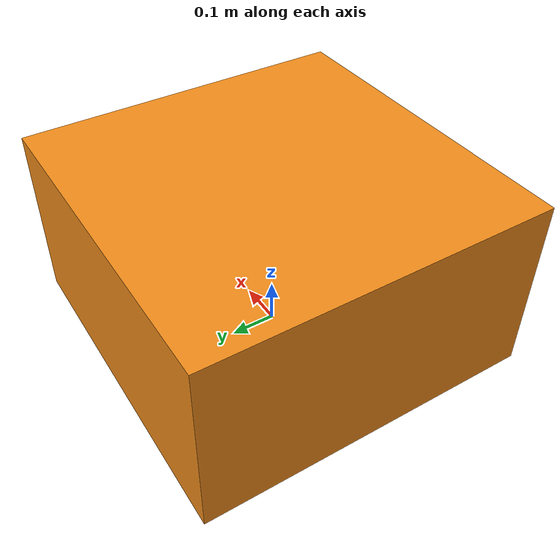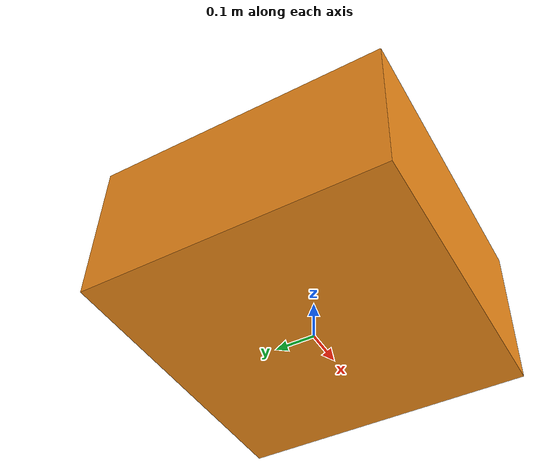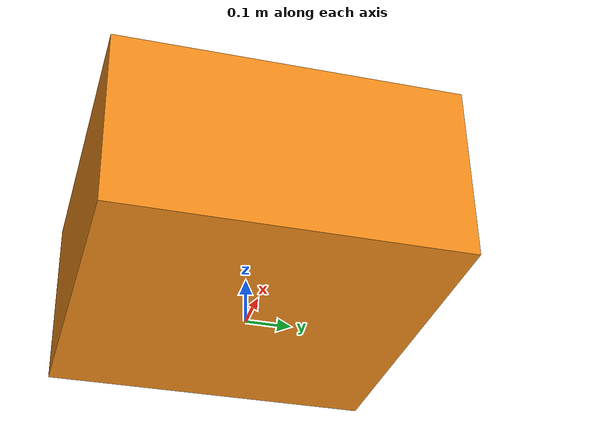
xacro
<?xml version="1.0"?>
<!-- ROSINANTE mobile base -->
<robot xmlns:xacro="http://www.ros.org/wiki/xacro" name="rosinante_robot">
  <xacro:arg name="prefix" default="" />

  <xacro:arg name="use_fake_hardware" default="false" />

  <xacro:include filename="$(find rosinante_description)/urdf/rosinante_description.urdf.xacro" />

  <xacro:include filename="$(find rosinante_description)/gazebo/rosinante.gazebo.xacro" />

  <!-- Import Rviz colors -->
  <xacro:include filename="$(find rosinante_description)/gazebo/rosinante.materials.xacro" />

  <!-- Import diffbot ros2_control description -->
  <xacro:include filename="$(find rosinante_description)/ros2_control/rosinante.ros2_control.xacro" />

  <xacro:rosinante prefix="$(arg prefix)" />

  <xacro:rosinante_gazebo prefix="$(arg prefix)" />

  <xacro:rosinante_ros2_control
    name="rosinante" prefix="$(arg prefix)"
    use_fake_hardware="$(arg use_fake_hardware)" />

</robot>

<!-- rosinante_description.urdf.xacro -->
<robot xmlns:xacro="http://www.ros.org/wiki/xacro">

  <xacro:macro name="rosinante" params="prefix">

  <!-- Constants for robot dimensions -->
  <xacro:property name="PI" value="3.1415926535897931"/>
  <xacro:property name="base_mass" value="15" /> <!-- arbitrary value for base mass -->
  <xacro:property name="base_width" value="0.75" />
  <xacro:property name="base_length" value="0.75" />
  <xacro:property name="base_height" value="0.40" />
  <xacro:property name="z_offset" value="-${base_height/2}" /> <!-- Space btw top of beam and the each joint -->

  <!-- Base Link -->
  <link name="${prefix}base_link">
    <collision>
      <origin xyz="0 0 0" rpy="0 0 0"/>
      <geometry>
        <box size="${base_width} ${base_length} ${base_height}"/>
      </geometry>
    </collision>

    <visual>
      <origin xyz="0 0 ${base_height/2}" rpy="0 0 0"/>
      <geometry>
        <box size="${base_width} ${base_length} ${base_height}"/>
      </geometry>
      <material name="orange"/>
    </visual>

    <inertial>
      <origin xyz="0 0 0" rpy="0 0 0"/>
      <mass value="${base_mass}"/>
      <inertia
        ixx="${base_mass / 12.0 * (base_length*base_length + base_height*base_height)}" ixy="0.0" ixz="0.0"
        iyy="${base_mass / 12.0 * (base_height*base_height + base_width*base_width)}" iyz="0.0"
        izz="${base_mass / 12.0 * (base_width*base_width + base_length*base_length)}"/>
    </inertial>
  </link>

  </xacro:macro>

</robot>
